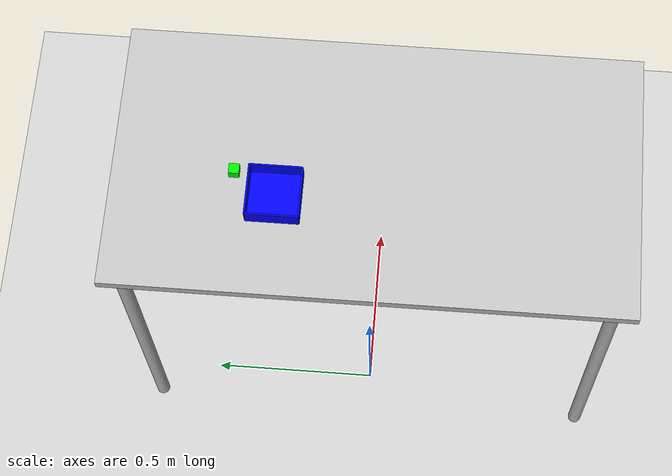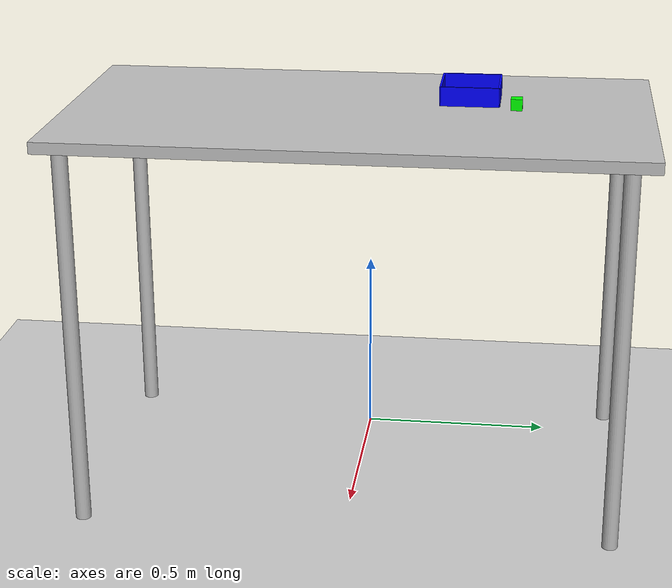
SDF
<sdf version="1.7">
 <world name="visual_grasping">
  <gravity>0 0 -9.8</gravity>
  <plugin filename="gz-sim-physics-system" name="gz::sim::systems::Physics"/>
  <plugin filename="gz-sim-user-commands-system" name="gz::sim::systems::UserCommands"/>
  <plugin filename="gz-sim-scene-broadcaster-system" name="gz::sim::systems::SceneBroadcaster"/>
  <light type="directional" name="sun">
   <pose>0 0 10 0 0 0</pose>
   <diffuse>1 1 1 1</diffuse>
   <specular>0.1 0.1 0.1 1</specular>
   <attenuation>
    <range>1000</range>
    <constant>0.9</constant>
    <linear>0.01</linear>
    <quadratic>0.001</quadratic>
   </attenuation>
   <direction>-0.5 0.1 -0.9</direction>
  </light>
  <include><uri>model://table</uri><name>table</name><pose>0.29 0 0 0 0 1.5708</pose></include>
  <include><uri>model://ground_plane</uri></include>
  <include><uri>model://cube</uri><name>cube_model</name><pose>0.25 0.4 1.03 0 0 0</pose></include>
  <include><uri>model://box</uri><name>box_model</name><pose>0.18 0.28 1.02 0 0 0</pose></include>
 </world>
</sdf>

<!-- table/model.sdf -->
<sdf version="1.5">
  <model name="table">
    <static>true</static>
    <link name="link">
      <collision name="surface">
        <pose>0 0 1.0 0 0 0</pose>
        <geometry>
          <box>
            <size>1.5 0.8 0.03</size>
          </box>
        </geometry>
        <surface>
          <friction>
            <ode>
              <mu>0.6</mu>
              <mu2>0.6</mu2>
            </ode>
          </friction>
        </surface>
      </collision>
      <visual name="visual1">
        <pose>0 0 1.0 0 0 0</pose>
        <geometry>
          <box>
            <size>1.5 0.8 0.03</size>
          </box>
        </geometry>
        <material>
          <!-- 手写 Gazebo/Grey：精确匹配 -->
          <ambient>0.75 0.75 0.75 1</ambient>
          <diffuse>0.75 0.75 0.75 1</diffuse>
          <specular>0.18 0.18 0.18 1</specular>
          <shininess>24</shininess>
          <emissive>0 0 0 1</emissive>
        </material>
      </visual>

      <collision name="front_left_leg">
        <pose>0.68 0.38 0.5 0 0 0</pose>
        <geometry>
          <cylinder>
            <radius>0.02</radius>
            <length>1.0</length>
          </cylinder>
        </geometry>
      </collision>
      <visual name="front_left_leg">
        <pose>0.68 0.38 0.5 0 0 0</pose>
        <geometry>
          <cylinder>
            <radius>0.02</radius>
            <length>1.0</length>
          </cylinder>
        </geometry>
        <material>
          <!-- 手写 Gazebo/Grey：精确匹配 -->
          <ambient>0.75 0.75 0.75 1</ambient>
          <diffuse>0.75 0.75 0.75 1</diffuse>
          <specular>0.18 0.18 0.18 1</specular>
          <shininess>24</shininess>
          <emissive>0 0 0 1</emissive>
        </material>
      </visual>

      <collision name="front_right_leg">
        <pose>0.68 -0.38 0.5 0 0 0</pose>
        <geometry>
          <cylinder>
            <radius>0.02</radius>
            <length>1.0</length>
          </cylinder>
        </geometry>
      </collision>
       <visual name="front_right_leg">
        <pose>0.68 -0.38 0.5 0 0 0</pose>
        <geometry>
          <cylinder>
            <radius>0.02</radius>
            <length>1.0</length>
          </cylinder>
        </geometry>
        <material>
          <!-- 手写 Gazebo/Grey -->
          <ambient>0.75 0.75 0.75 1</ambient>
          <diffuse>0.75 0.75 0.75 1</diffuse>
          <specular>0.18 0.18 0.18 1</specular>
          <shininess>24</shininess>
          <emissive>0 0 0 1</emissive>
        </material>
      </visual>

      <collision name="back_right_leg">
        <pose>-0.68 -0.38 0.5 0 0 0</pose>
        <geometry>
          <cylinder>
            <radius>0.02</radius>
            <length>1.0</length>
          </cylinder>
        </geometry>
      </collision>
      <visual name="back_right_leg">
        <pose>-0.68 -0.38 0.5 0 0 0</pose>
        <geometry>
          <cylinder>
            <radius>0.02</radius>
            <length>1.0</length>
          </cylinder>
        </geometry>
        <material>
          <!-- 手写 Gazebo/Grey -->
          <ambient>0.75 0.75 0.75 1</ambient>
          <diffuse>0.75 0.75 0.75 1</diffuse>
          <specular>0.18 0.18 0.18 1</specular>
          <shininess>24</shininess>
          <emissive>0 0 0 1</emissive>
        </material>
      </visual>

      <collision name="back_left_leg">
        <pose>-0.68 0.38 0.5 0 0 0</pose>
        <geometry>
          <cylinder>
            <radius>0.02</radius>
            <length>1.0</length>
          </cylinder>
        </geometry>
      </collision>
       <visual name="back_left_leg">
        <pose>-0.68 0.38 0.5 0 0 0</pose>
        <geometry>
          <cylinder>
            <radius>0.02</radius>
            <length>1.0</length>
          </cylinder>
        </geometry>
        <material>
          <!-- 手写 Gazebo/Grey -->
          <ambient>0.75 0.75 0.75 1</ambient>
          <diffuse>0.75 0.75 0.75 1</diffuse>
          <specular>0.18 0.18 0.18 1</specular>
          <shininess>24</shininess>
          <emissive>0 0 0 1</emissive>
        </material>
      </visual>

    </link>
  </model>
</sdf>

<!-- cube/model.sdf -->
<sdf version="1.7">
  <model name="cube">
    <static>false</static>
    <self_collide>false</self_collide>
    <allow_auto_disable>false</allow_auto_disable>

    <link name="box_link">
      <gravity>true</gravity>
      <enable_wind>false</enable_wind>

      <inertial>
        <mass>0.08</mass>
        <inertia>
          <ixx>1.2e-5</ixx>
          <iyy>1.2e-5</iyy>
          <izz>1.2e-5</izz>
          <ixy>0.0</ixy>
          <ixz>0.0</ixz>
          <iyz>0.0</iyz>
        </inertia>
      </inertial>

      <velocity_decay>
        <linear>0.08</linear>
        <angular>0.12</angular>
      </velocity_decay>

      <collision name="box_collision">
        <geometry>
          <box>
            <size>0.03 0.03 0.03</size>
          </box>
        </geometry>
        <surface>
          <friction>
            <ode>
              <mu>0.08</mu>
              <mu2>0.08</mu2>
            </ode>
          </friction>
          <contact>
            <ode/>
          </contact>
        </surface>
      </collision>

      <visual name="box_visual">
        <geometry>
          <box>
            <size>0.03 0.03 0.03</size>
          </box>
        </geometry>
        <material>
          <ambient>0 1 0 1</ambient>
          <diffuse>0 1 0 1</diffuse>
          <specular>0.1 0.1 0.1 1</specular>
        </material>
      </visual>
    </link>

    <plugin
      filename="ignition-gazebo-velocity-control-system"
      name="ignition::gazebo::systems::VelocityControl">
      <topic>/model/cube_model/cmd_vel</topic>
      <initial_linear>0.0 0.0 0.0</initial_linear>
      <initial_angular>0.0 0.0 0.0</initial_angular>
    </plugin>
  </model>
</sdf>

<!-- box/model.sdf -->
<sdf version="1.7">
  <model name="box">
    <static>true</static>
    <link name="base_link">
      <collision name="base_collision">
        <pose>0 0 0.0025 0 0 0</pose>
        <geometry><box><size>0.15 0.15 0.005</size></box></geometry>
      </collision>
      <visual name="base_visual">
        <pose>0 0 0.0025 0 0 0</pose>
        <geometry><box><size>0.15 0.15 0.005</size></box></geometry>
        <material><ambient>0 0 1 1</ambient><diffuse>0 0 1 1</diffuse></material>
      </visual>
    </link>
    <link name="walls">
      <visual name="front"><pose>0 -0.075 0.025 0 0 0</pose><geometry><box><size>0.15 0.005 0.05</size></box></geometry><material><ambient>0 0 1 1</ambient><diffuse>0 0 1 1</diffuse></material></visual>
      <visual name="back"><pose>0 0.075 0.025 0 0 0</pose><geometry><box><size>0.15 0.005 0.05</size></box></geometry><material><ambient>0 0 1 1</ambient><diffuse>0 0 1 1</diffuse></material></visual>
      <visual name="left"><pose>-0.075 0 0.025 0 0 0</pose><geometry><box><size>0.005 0.15 0.05</size></box></geometry><material><ambient>0 0 1 1</ambient><diffuse>0 0 1 1</diffuse></material></visual>
      <visual name="right"><pose>0.075 0 0.025 0 0 0</pose><geometry><box><size>0.005 0.15 0.05</size></box></geometry><material><ambient>0 0 1 1</ambient><diffuse>0 0 1 1</diffuse></material></visual>
      <collision name="front"><pose>0 -0.075 0.025 0 0 0</pose><geometry><box><size>0.15 0.005 0.05</size></box></geometry></collision>
      <collision name="back"><pose>0 0.075 0.025 0 0 0</pose><geometry><box><size>0.15 0.005 0.05</size></box></geometry></collision>
      <collision name="left"><pose>-0.075 0 0.025 0 0 0</pose><geometry><box><size>0.005 0.15 0.05</size></box></geometry></collision>
      <collision name="right"><pose>0.075 0 0.025 0 0 0</pose><geometry><box><size>0.005 0.15 0.05</size></box></geometry></collision>
    </link>
    <joint name="walls_fixed" type="fixed">
      <parent>base_link</parent>
      <child>walls</child>
    </joint>
  </model>
</sdf>
